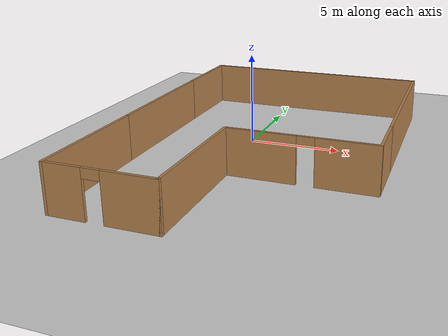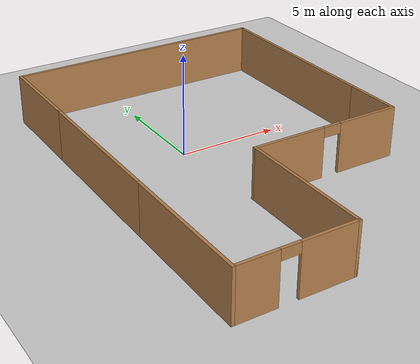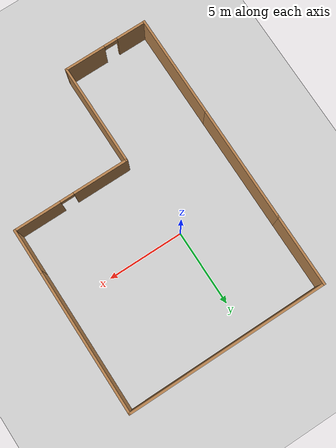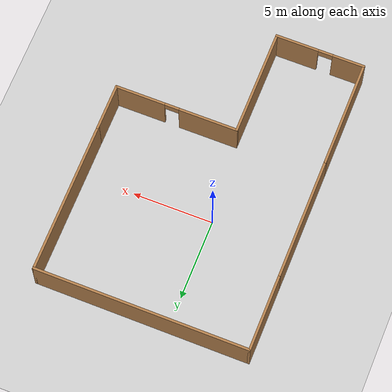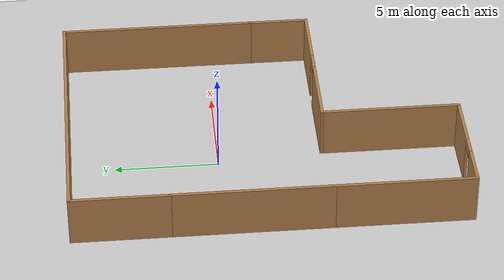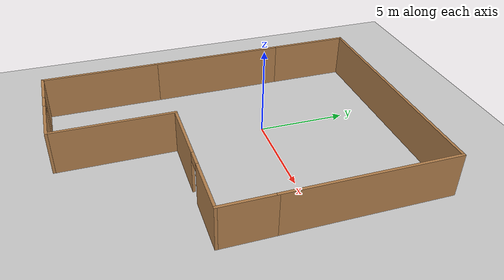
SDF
<sdf version="1.7">
 <world name="default">
  <light name="sun" type="directional">
   <pose>0 0 10 0 -0 0</pose>
   <diffuse>0.8 0.8 0.8 1</diffuse>
   <specular>0.2 0.2 0.2 1</specular>
   <attenuation>
    <range>1000</range>
    <constant>0.9</constant>
    <linear>0.01</linear>
    <quadratic>0.001</quadratic>
   </attenuation>
   <direction>-0.5 0.1 -0.9</direction>
   <spot><inner_angle>0</inner_angle><outer_angle>0</outer_angle><falloff>0</falloff></spot>
  </light>
  <model name="ground_plane">
   <static>1</static>
   <link name="link">
    <collision name="collision">
     <geometry><plane><normal>0 0 1</normal><size>100 100</size></plane></geometry>
     <surface>
      <contact><collide_bitmask>65535</collide_bitmask></contact>
      <friction><ode><mu>100</mu><mu2>50</mu2></ode></friction>
     </surface>
    </collision>
    <visual name="visual">
     <cast_shadows>0</cast_shadows>
     <geometry><plane><normal>0 0 1</normal><size>100 100</size></plane></geometry>
     <material>
      <script><uri>file://media/materials/scripts/gazebo.material</uri><name>Gazebo/Grey</name></script>
     </material>
    </visual>
   </link>
  </model>
  <gravity>0 0 -9.8</gravity>
  <magnetic_field>6e-06 2.3e-05 -4.2e-05</magnetic_field>
  <atmosphere type="adiabatic"/>
  <physics type="ode">
   <max_step_size>0.001</max_step_size>
   <real_time_factor>1</real_time_factor>
   <real_time_update_rate>1000</real_time_update_rate>
  </physics>
  <scene><ambient>0.4 0.4 0.4 1</ambient><background>0.7 0.7 0.7 1</background><shadows>1</shadows></scene>
  <spherical_coordinates>
   <surface_model>EARTH_WGS84</surface_model>
   <latitude_deg>0</latitude_deg>
   <longitude_deg>0</longitude_deg>
   <elevation>0</elevation>
   <heading_deg>0</heading_deg>
  </spherical_coordinates>
  <model name="wall">
   <pose>1.52921 -2.23968 0 0 -0 0</pose>
   <link name="Wall_10">
    <collision name="Wall_10_Collision">
     <geometry><box><size>13.25 0.15 2.5</size></box></geometry>
     <pose>0 0 1.25 0 -0 0</pose>
    </collision>
    <visual name="Wall_10_Visual">
     <pose>0 0 1.25 0 -0 0</pose>
     <geometry><box><size>13.25 0.15 2.5</size></box></geometry>
     <material>
      <script><uri>file://media/materials/scripts/gazebo.material</uri><name>Gazebo/Wood</name></script>
      <ambient>1 1 1 1</ambient>
     </material>
     <meta><layer>0</layer></meta>
    </visual>
    <pose>-0 9.4 0 0 -0 0</pose>
   </link>
   <link name="Wall_11">
    <collision name="Wall_11_Collision">
     <geometry><box><size>9.5 0.15 2.5</size></box></geometry>
     <pose>0 0 1.25 0 -0 0</pose>
    </collision>
    <visual name="Wall_11_Visual">
     <pose>0 0 1.25 0 -0 0</pose>
     <geometry><box><size>9.5 0.15 2.5</size></box></geometry>
     <material>
      <script><uri>file://media/materials/scripts/gazebo.material</uri><name>Gazebo/Wood</name></script>
      <ambient>1 1 1 1</ambient>
     </material>
     <meta><layer>0</layer></meta>
    </visual>
    <pose>6.55 4.725 0 0 -0 -1.5708</pose>
   </link>
   <link name="Wall_13">
    <collision name="Wall_13_Collision">
     <geometry><box><size>3 0.15 2.5</size></box></geometry>
     <pose>0 0 1.25 0 -0 0</pose>
    </collision>
    <visual name="Wall_13_Visual">
     <pose>0 0 1.25 0 -0 0</pose>
     <geometry><box><size>3 0.15 2.5</size></box></geometry>
     <material>
      <script><uri>file://media/materials/scripts/gazebo.material</uri><name>Gazebo/Wood</name></script>
      <ambient>1 1 1 1</ambient>
     </material>
     <meta><layer>0</layer></meta>
    </visual>
    <pose>6.55 -1.375 0 0 -0 -1.5708</pose>
   </link>
   <link name="Wall_14">
    <pose>2.75 -2.8 0 0 -0 3.14159</pose>
    <visual name="Wall_14_Visual_0">
     <pose>-2.29956 0 1.25 0 -0 0</pose>
     <geometry><box><size>3.15088 0.15 2.5</size></box></geometry>
     <material>
      <script><uri>file://media/materials/scripts/gazebo.material</uri><name>Gazebo/Wood</name></script>
      <ambient>1 1 1 1</ambient>
     </material>
     <meta><layer>0</layer></meta>
    </visual>
    <collision name="Wall_14_Collision_0">
     <geometry><box><size>3.15088 0.15 2.5</size></box></geometry>
     <pose>-2.29956 0 1.25 0 -0 0</pose>
    </collision>
    <visual name="Wall_14_Visual_1">
     <pose>2.02544 0 1.25 0 -0 0</pose>
     <geometry><box><size>3.69912 0.15 2.5</size></box></geometry>
     <material>
      <script><uri>file://media/materials/scripts/gazebo.material</uri><name>Gazebo/Wood</name></script>
      <ambient>1 1 1 1</ambient>
     </material>
     <meta><layer>0</layer></meta>
    </visual>
    <collision name="Wall_14_Collision_1">
     <geometry><box><size>3.69912 0.15 2.5</size></box></geometry>
     <pose>2.02544 0 1.25 0 -0 0</pose>
    </collision>
    <visual name="Wall_14_Visual_2">
     <pose>-0.274116 0 2.25 0 -0 0</pose>
     <geometry><box><size>0.9 0.15 0.5</size></box></geometry>
     <material>
      <script><uri>file://media/materials/scripts/gazebo.material</uri><name>Gazebo/Wood</name></script>
      <ambient>1 1 1 1</ambient>
     </material>
     <meta><layer>0</layer></meta>
    </visual>
    <collision name="Wall_14_Collision_2">
     <geometry><box><size>0.9 0.15 0.5</size></box></geometry>
     <pose>-0.274116 0 2.25 0 -0 0</pose>
    </collision>
   </link>
   <link name="Wall_15">
    <collision name="Wall_15_Collision">
     <geometry><box><size>6.75 0.15 2.5</size></box></geometry>
     <pose>0 0 1.25 0 -0 0</pose>
    </collision>
    <visual name="Wall_15_Visual">
     <pose>0 0 1.25 0 -0 0</pose>
     <geometry><box><size>6.75 0.15 2.5</size></box></geometry>
     <material>
      <script><uri>file://media/materials/scripts/gazebo.material</uri><name>Gazebo/Wood</name></script>
      <ambient>1 1 1 1</ambient>
     </material>
     <meta><layer>0</layer></meta>
    </visual>
    <pose>-1.05 -6.1 0 0 -0 -1.5708</pose>
   </link>
   <link name="Wall_18">
    <collision name="Wall_18_Collision">
     <geometry><box><size>6.75 0.15 2.5</size></box></geometry>
     <pose>0 0 1.25 0 -0 0</pose>
    </collision>
    <visual name="Wall_18_Visual">
     <pose>0 0 1.25 0 -0 0</pose>
     <geometry><box><size>6.75 0.15 2.5</size></box></geometry>
     <material>
      <script><uri>file://media/materials/scripts/gazebo.material</uri><name>Gazebo/Wood</name></script>
      <ambient>1 1 1 1</ambient>
     </material>
     <meta><layer>0</layer></meta>
    </visual>
    <pose>-6.55 -6.1 0 0 -0 -1.5708</pose>
   </link>
   <link name="Wall_20">
    <pose>-3.8 -9.4 0 0 -0 0</pose>
    <visual name="Wall_20_Visual_0">
     <pose>-1.8125 0 1.25 0 -0 0</pose>
     <geometry><box><size>2.02499 0.15 2.5</size></box></geometry>
     <material>
      <script><uri>file://media/materials/scripts/gazebo.material</uri><name>Gazebo/Wood</name></script>
      <ambient>1 1 1 1</ambient>
     </material>
     <meta><layer>0</layer></meta>
    </visual>
    <collision name="Wall_20_Collision_0">
     <geometry><box><size>2.02499 0.15 2.5</size></box></geometry>
     <pose>-1.8125 0 1.25 0 -0 0</pose>
    </collision>
    <visual name="Wall_20_Visual_1">
     <pose>1.4625 0 1.25 0 -0 0</pose>
     <geometry><box><size>2.72501 0.15 2.5</size></box></geometry>
     <material>
      <script><uri>file://media/materials/scripts/gazebo.material</uri><name>Gazebo/Wood</name></script>
      <ambient>1 1 1 1</ambient>
     </material>
     <meta><layer>0</layer></meta>
    </visual>
    <collision name="Wall_20_Collision_1">
     <geometry><box><size>2.72501 0.15 2.5</size></box></geometry>
     <pose>1.4625 0 1.25 0 -0 0</pose>
    </collision>
    <visual name="Wall_20_Visual_2">
     <pose>-0.350006 0 2.25 0 -0 0</pose>
     <geometry><box><size>0.9 0.15 0.5</size></box></geometry>
     <material>
      <script><uri>file://media/materials/scripts/gazebo.material</uri><name>Gazebo/Wood</name></script>
      <ambient>1 1 1 1</ambient>
     </material>
     <meta><layer>0</layer></meta>
    </visual>
    <collision name="Wall_20_Collision_2">
     <geometry><box><size>0.9 0.15 0.5</size></box></geometry>
     <pose>-0.350006 0 2.25 0 -0 0</pose>
    </collision>
   </link>
   <link name="Wall_7">
    <collision name="Wall_7_Collision">
     <geometry><box><size>7.75 0.15 2.5</size></box></geometry>
     <pose>0 0 1.25 0 -0 0</pose>
    </collision>
    <visual name="Wall_7_Visual">
     <pose>0 0 1.25 0 -0 0</pose>
     <geometry><box><size>7.75 0.15 2.5</size></box></geometry>
     <material>
      <script><uri>file://media/materials/scripts/gazebo.material</uri><name>Gazebo/Wood</name></script>
      <ambient>1 1 1 1</ambient>
     </material>
     <meta><layer>0</layer></meta>
    </visual>
    <pose>-6.55 1 0 0 -0 -1.5708</pose>
   </link>
   <link name="Wall_9">
    <collision name="Wall_9_Collision">
     <geometry><box><size>4.75 0.15 2.5</size></box></geometry>
     <pose>0 0 1.25 0 -0 0</pose>
    </collision>
    <visual name="Wall_9_Visual">
     <pose>0 0 1.25 0 -0 0</pose>
     <geometry><box><size>4.75 0.15 2.5</size></box></geometry>
     <material>
      <script><uri>file://media/materials/scripts/gazebo.material</uri><name>Gazebo/Wood</name></script>
      <ambient>1 1 1 1</ambient>
     </material>
     <meta><layer>0</layer></meta>
    </visual>
    <pose>-6.55 7.1 0 0 -0 1.5708</pose>
   </link>
   <static>1</static>
  </model>
 </world>
</sdf>
